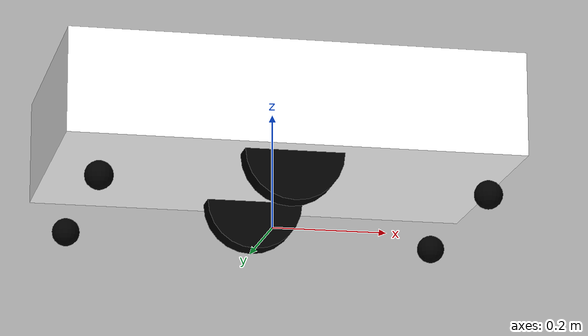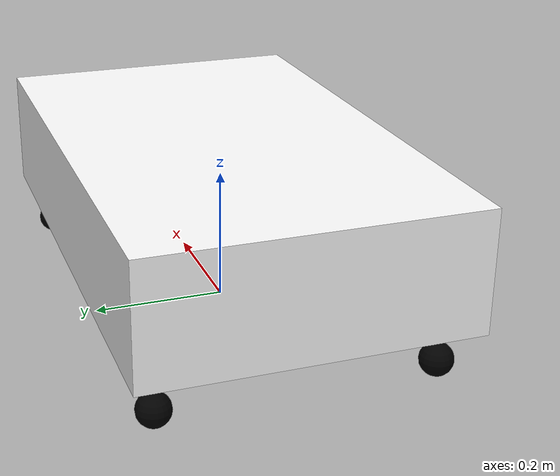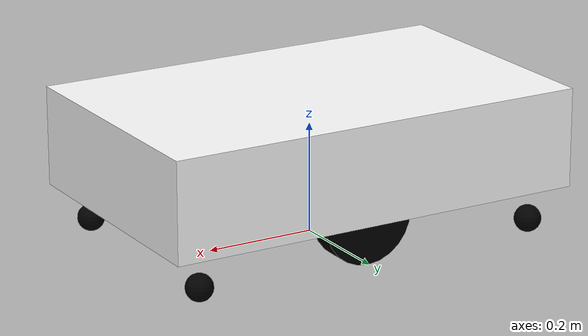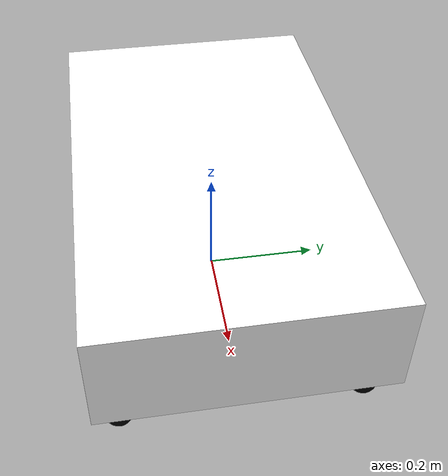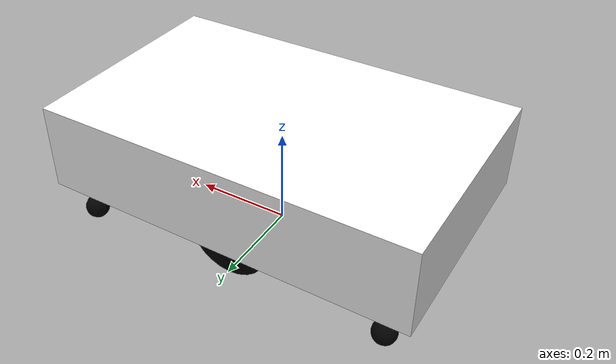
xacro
<?xml version="1.0"?>
<robot name="my_bot" xmlns:xacro="http://www.ros.org/wiki/xacro">

    <xacro:include filename="inertial_macros.xacro" />

    <!-- ===== dims (m) ===== -->
    <xacro:property name="chassis_length" value="0.780"/>
    <xacro:property name="chassis_width"  value="0.480"/>
    <xacro:property name="chassis_height" value="0.180"/>
    <xacro:property name="chassis_mass"   value="10.0"/>

    <xacro:property name="wheel_radius" value="0.085"/>
    <xacro:property name="wheel_width"  value="0.045"/>
    <xacro:property name="wheel_mass"   value="1.0"/>
    <xacro:property name="wheel_y_off"  value="0.175"/> <!-- drive wheel Y from base (half of 0.35m separation) -->

    <xacro:property name="caster_radius" value="0.0245"/> <!-- match wheel r, keep chassis level -->
    <xacro:property name="caster_mass"   value="0.2"/>
    <xacro:property name="caster_x_off"  value="0.330"/>
    <xacro:property name="caster_y_off"  value="0.200"/>

    <material name="white">  <color rgba="1 1 1 1"/>      </material>
    <material name="blue">   <color rgba="0.2 0.2 1 1"/> </material>
    <material name="black">  <color rgba="0 0 0 1"/>      </material>
    <material name="red">    <color rgba="1 0 0 1"/>      </material>
    <material name="green">  <color rgba="0 1 0 1"/>      </material>
    <material name="yellow"> <color rgba="1 1 0 1"/>      </material>
    <material name="orange"> <color rgba="1 0.5 0 1"/>   </material>
    <material name="grey">   <color rgba="0.5 0.5 0.5 1"/></material>
    <material name="light_blue"> <color rgba="0.6 0.8 1.0 1.0"/> </material>
    <material name="light_grey"><color rgba="0.7 0.7 0.7 1.0"/></material>

    <!-- ========================= base ========================= -->
    <link name="base_link"></link>

    <!-- ========================= chassis ========================= -->
    <joint name="chassis_joint" type="fixed">
        <parent link="base_link"/>
        <child link="chassis"/>
        <origin xyz="0 0 ${wheel_radius}" rpy="0 0 0"/>
    </joint>

    <link name="chassis">
        <visual>
            <origin xyz="0 0 ${chassis_height/2}" rpy="0 0 0"/>
            <geometry>
                <box size="${chassis_length} ${chassis_width} ${chassis_height}"/>
            </geometry>
            <material name="white"/>
        </visual>
        <collision>
            <origin xyz="0 0 ${chassis_height/2}" rpy="0 0 0"/>
            <geometry><box size="${chassis_length} ${chassis_width} ${chassis_height}"/></geometry>
        </collision>
        <xacro:inertial_box mass="${chassis_mass}" x="${chassis_length}" y="${chassis_width}" z="${chassis_height}">
            <origin xyz="0 0 ${chassis_height/2}" rpy="0 0 0"/>
        </xacro:inertial_box>
    </link>

    <gazebo reference="chassis">
        <material>Gazebo/Red</material>
    </gazebo>

    <!-- ========================= drive wheel macro ========================= -->
    <xacro:macro name="drive_wheel" params="prefix y_reflect">
        <joint name="${prefix}_wheel_joint" type="continuous">
            <parent link="base_link"/>
            <child link="${prefix}_wheel"/>
            <origin xyz="0 ${y_reflect * wheel_y_off} ${wheel_radius}" rpy="${-pi/2} 0 0"/>
            <axis xyz="0 0 1"/>
        </joint>

        <link name="${prefix}_wheel">
            <visual>
                <geometry><cylinder radius="${wheel_radius}" length="${wheel_width}"/></geometry>
                <material name="black"/>
            </visual>
            <collision>
                <geometry><cylinder radius="${wheel_radius}" length="${wheel_width}"/></geometry>
            </collision>
            <xacro:inertial_cylinder mass="${wheel_mass}" radius="${wheel_radius}" length="${wheel_width}">
                <origin xyz="0 0 0" rpy="0 0 0"/>
            </xacro:inertial_cylinder>
        </link>

        <gazebo reference="${prefix}_wheel">
            <material>Gazebo/Black</material>
        </gazebo>
    </xacro:macro>

    <xacro:drive_wheel prefix="left"  y_reflect="1"/>
    <xacro:drive_wheel prefix="right" y_reflect="-1"/>

    <!-- ========================= caster wheel macro ========================= -->
    <xacro:macro name="caster_wheel" params="prefix x_pos y_pos">
        <joint name="${prefix}_caster_joint" type="fixed">
            <parent link="base_link"/>
            <child link="${prefix}_caster"/>
            <origin xyz="${x_pos} ${y_pos} ${caster_radius}" rpy="0 0 0"/>
        </joint>

        <link name="${prefix}_caster">
            <visual>
                <geometry><sphere radius="${caster_radius}"/></geometry>
                <material name="black"/>
            </visual>
            <collision>
                <geometry><sphere radius="${caster_radius}"/></geometry>
            </collision>
            <xacro:inertial_sphere mass="${caster_mass}" radius="${caster_radius}">
                <origin xyz="0 0 0" rpy="0 0 0"/>
            </xacro:inertial_sphere>
        </link>

        <gazebo reference="${prefix}_caster">
            <material>Gazebo/Black</material>
            <mu1>0.0</mu1>
            <mu2>0.0</mu2>
        </gazebo>
    </xacro:macro>

    <xacro:caster_wheel prefix="front_left"  x_pos="${caster_x_off}"  y_pos="${caster_y_off}"/>
    <xacro:caster_wheel prefix="front_right" x_pos="${caster_x_off}"  y_pos="${-caster_y_off}"/>
    <xacro:caster_wheel prefix="rear_left"   x_pos="${-caster_x_off}" y_pos="${caster_y_off}"/>
    <xacro:caster_wheel prefix="rear_right"  x_pos="${-caster_x_off}" y_pos="${-caster_y_off}"/>

    <!-- ========================= imu ========================= -->
    <link name="imu_link"/>

    <joint name="imu_joint" type="fixed">
        <parent link="base_link"/>
        <child link="imu_link"/>
        <origin xyz="0 0 0" rpy="0 0 0"/>
    </joint>

</robot>
